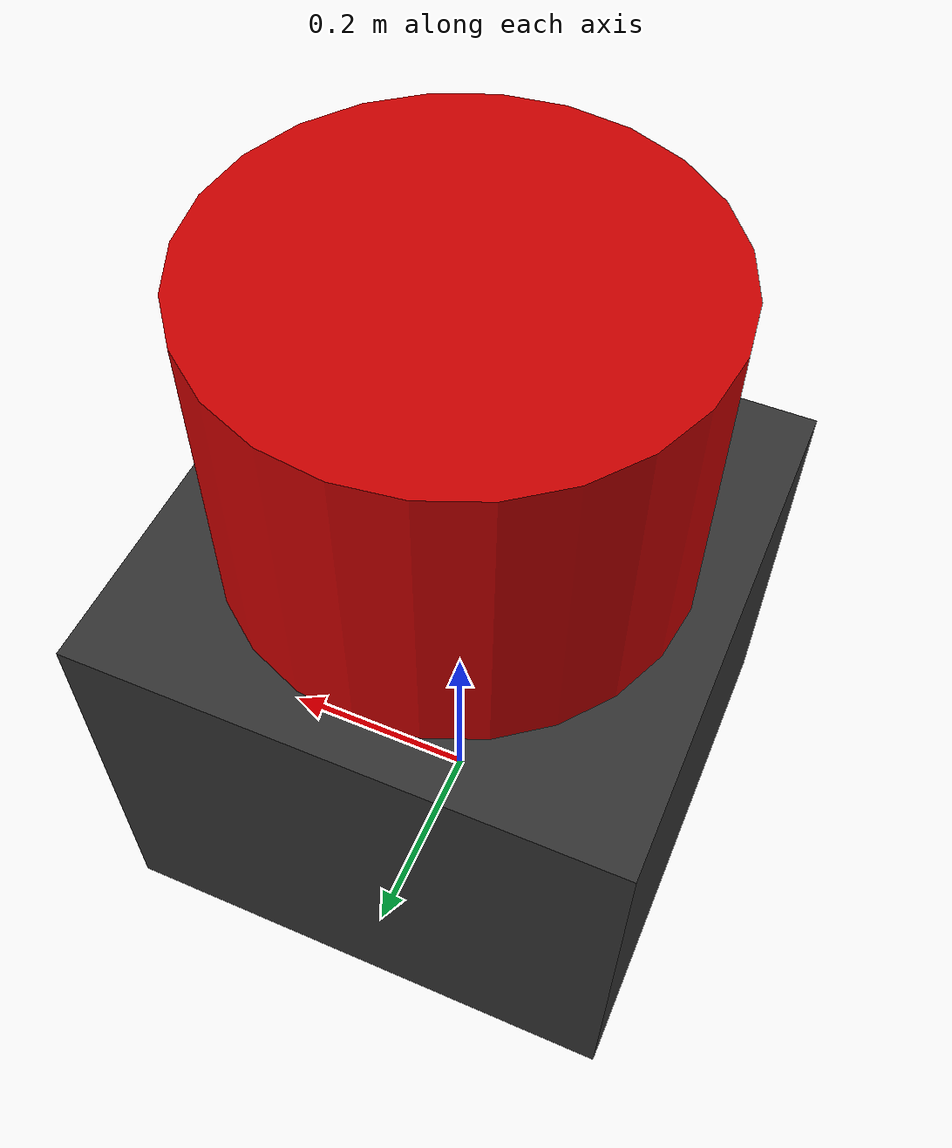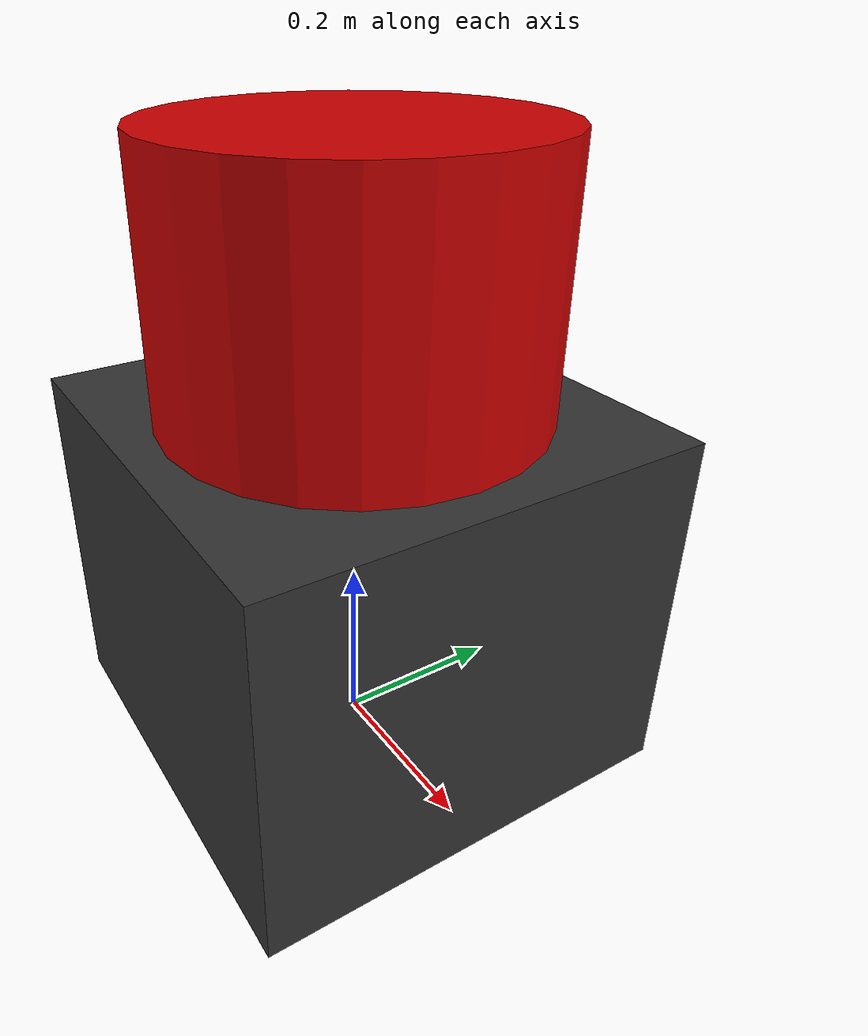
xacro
<?xml version="1.0"?>
<!-- simplified laser scanner, 1 box + 1 cylinder -->
<robot name="laser_scanner" xmlns:xacro="http://www.ros.org/wiki/xacro">

  <!-- Hokuyo URG-04LX-UG01 dimensions -->
  <xacro:property name="laser_height" value="0.41" />
  <xacro:property name="laser_width" value="0.5" />
  <xacro:property name="diameter" value="0.42" />
  <xacro:property name="cylinder_height" value="0.29" />
  <xacro:property name="measurement_window_height" value="0.205" />

  <!-- rviz color visualisation -->
  <material name="grey"><color rgba="0.2 0.2 0.2 1.0"/></material>
  <material name="red"><color rgba="0.8 0.0 0.0 1.0"/></material>

  <link name="laser_body">
    <visual>
      <origin rpy="0 0 0" xyz="0 0 ${laser_height/2.0}"/>
      <geometry>
        <box size="${laser_width} ${laser_width} ${laser_height}"/>
      </geometry>
      <material name="grey"/>
    </visual>
    <collision>
      <origin rpy="0 0 0" xyz="0 0 ${laser_height/2.0}"/>
      <geometry>
        <box size="${laser_width} ${laser_width} ${laser_height}"/>
      </geometry>
    </collision>
    <!-- inertia missing! -->
  </link>

  <link name="laser">
    <visual>
      <origin rpy="0 0 0" xyz="0 0 ${cylinder_height/2.0 - measurement_window_height}"/>
      <geometry>
        <cylinder radius="${diameter/2.0}" length="${cylinder_height}"/>
      </geometry>
      <material name="red"/>
    </visual>
    <collision>
      <origin rpy="0 0 0" xyz="0 0 ${cylinder_height/2.0 - measurement_window_height}"/>
      <geometry>
        <cylinder radius="${diameter}/2.0}" length="${cylinder_height}"/>
      </geometry>
    </collision>
    <!-- inertia missing! -->
  </link>

  <joint name="laser_body_to_laser" type="fixed">
    <origin rpy="0 0 0" xyz="0 0 ${laser_height + measurement_window_height}"/>
    <parent link="laser_body"/>
    <child link="laser"/>
  </joint>

</robot>
